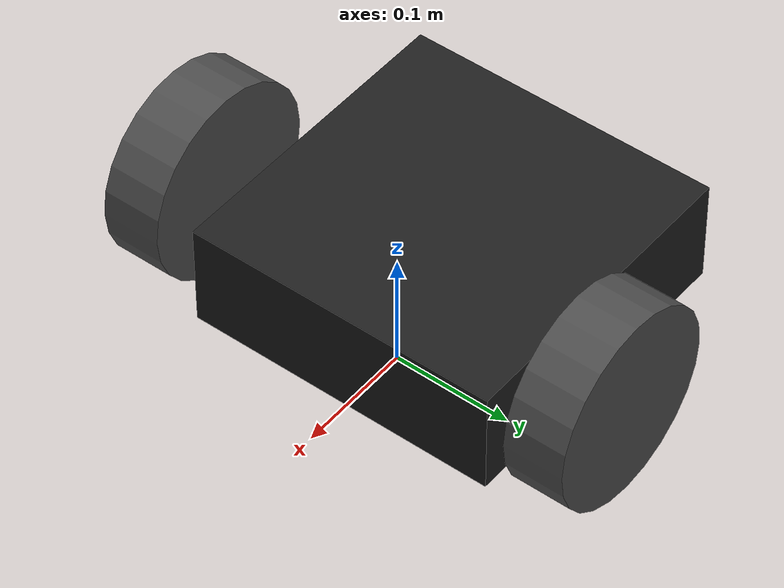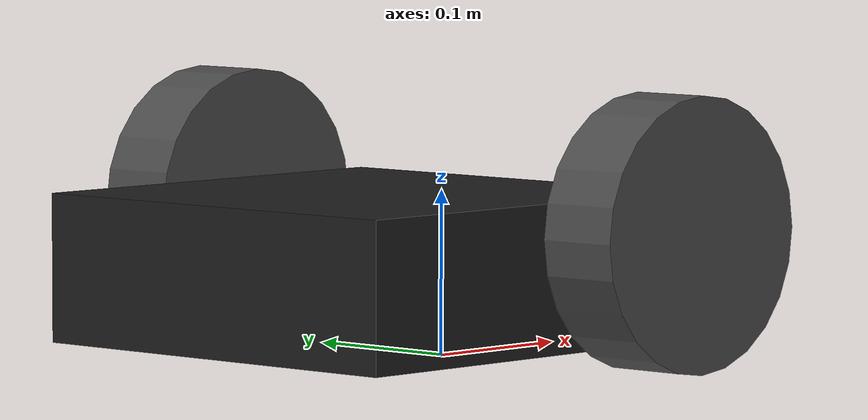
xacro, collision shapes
<?xml version="1.0" ?>
<robot name="zetabank" xmlns:xacro="http://ros.org/wiki/xacro">
  <xacro:include filename="$(find zetabank_description)/urdf/common_properties.xacro"/>
  <xacro:include filename="$(find zetabank_description)/urdf/zetabank.gazebo.xacro"/>
  <xacro:include filename="$(find zetabank_description)/urdf/sonar_sensor.urdf.xacro"/>

  <link name="base_footprint"/>

  <joint name="base_joint" type="fixed">
    <parent link="base_footprint"/>
    <child link="base_link" />
    <origin xyz="0 0 0.010" rpy="0 0 ${M_PI*0.5}"/>
  </joint>

  <link name="base_link">
    <visual>
      <origin xyz="-0 -0.33 0.0" rpy="0 0 ${M_PI*1}"/>
      <geometry>
        <mesh filename="package://zetabank_description/meshes/zetabank_LCV.STL" scale="1 1 1"/>
      </geometry>
      <material name="light_black"/>
    </visual>
    <collision>
      <origin xyz="0 0.064  0.048" rpy="0 0 0"/>
      <geometry>
        <box size="0.265 0.265 0.089"/>
      </geometry>
    </collision>
    <inertial>
      <origin xyz="0 0.064 0" rpy="0 0 0"/>
      <mass value="1"/>
      <inertia ixx="0.01" ixy="0.0" ixz="0.0"
               iyy="0.01" iyz="0.0"
               izz="0.01" />
    </inertial>

  </link>

<joint name="wheel_left_joint" type="continuous">
    <parent link="base_link"/>
    <child link="wheel_left_link"/>
    <origin xyz="0.181 0  0.075" rpy="${-M_PI*0.5} 0 ${-M_PI*0.5}"/>
    <axis xyz="0 0 1"/>
  </joint>

  <link name="wheel_left_link">
    <collision>
      <origin rpy="0 0 0" xyz="0 0 0"/>
      <geometry>
        <cylinder length="0.050" radius="0.0812"/>
      </geometry>
    </collision>
    <inertial>
      <origin xyz="0 0 0" />
      <mass value="0.01" />
      <inertia ixx="0.001" ixy="0.0" ixz="0.0"
               iyy="0.001" iyz="0.0"
               izz="0.001" />
    </inertial>
  </link>

  <joint name="wheel_right_joint" type="continuous">
    <parent link="base_link"/>
    <child link="wheel_right_link"/>
    <origin xyz="-0.181 0  0.075" rpy="${-M_PI*0.5} 0 ${-M_PI*0.5}"/>
    <axis xyz="0 0 1"/>
  </joint>

  <link name="wheel_right_link">
    <collision>
      <origin rpy="0 0 0" xyz="0 0 0"/>
      <geometry>
        <cylinder length="0.050" radius="0.0812"/>
      </geometry>
    </collision>
    <inertial>
      <origin xyz="0 0 0" />
      <mass value="0.01" />
      <inertia ixx="0.001" ixy="0.0" ixz="0.0"
               iyy="0.001" iyz="0.0"
               izz="0.001" />
    </inertial>
  </link>

  <joint name="imu_joint" type="fixed">
    <parent link="base_link"/>
    <child link="imu_link"/>
    <origin xyz="0.0 0.0 0.0" rpy="0 0 ${-M_PI*0.5}"/>
  </joint>

  <link name="imu_link"/>

  <joint name="lidar_joint" type="fixed">
    <parent link="base_link"/>
    <child link="lidar_link"/>
    <origin xyz="0 -0.1725 0.15" rpy="0 0 ${-M_PI*0.5}"/>
  </joint>
  <link name="lidar_link"/>

    <joint name="camera_1_joint" type="fixed">
    <parent link="lidar_link"/>
    <child link="camera_1_link"/>
    <origin xyz="-0.21 0 0" rpy="0 0 ${-M_PI*0.25}"/>
  </joint>
  <link name="camera_1_link"/>

    <joint name="camera_2_joint" type="fixed">
    <parent link="lidar_link"/>
    <child link="camera_2_link"/>
    <origin xyz="0.21 0 0" rpy="0 0 ${M_PI*0.25}"/>
  </joint>
  <link name="camera_2_link"/>
</robot>
